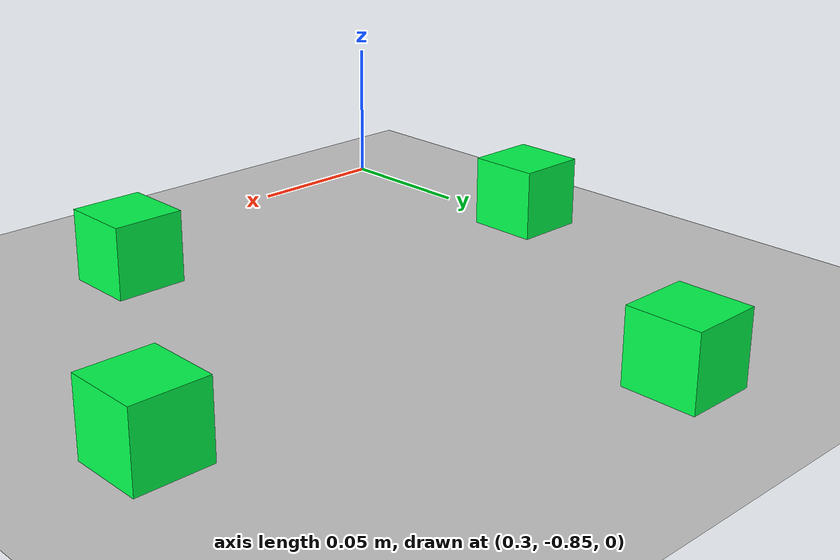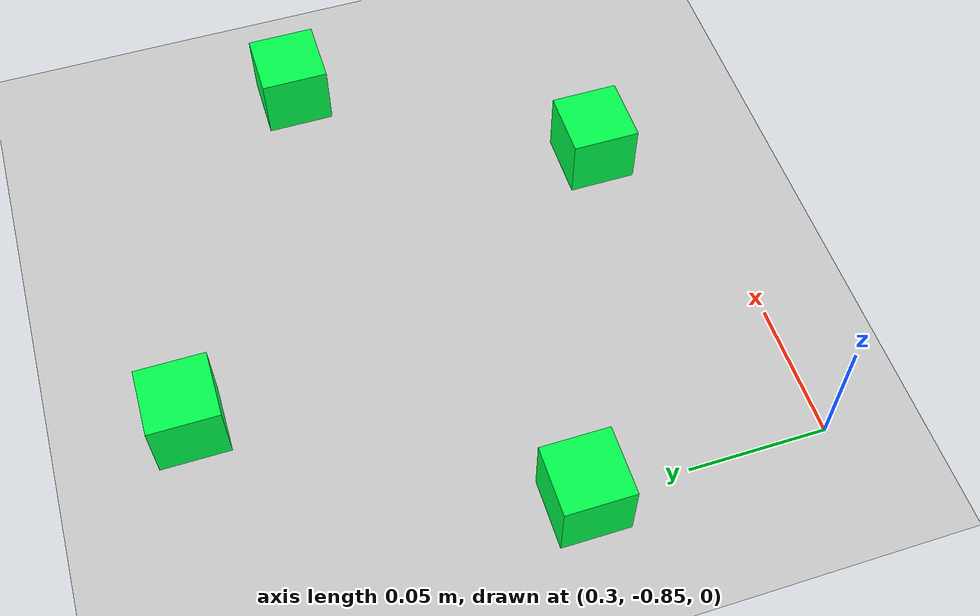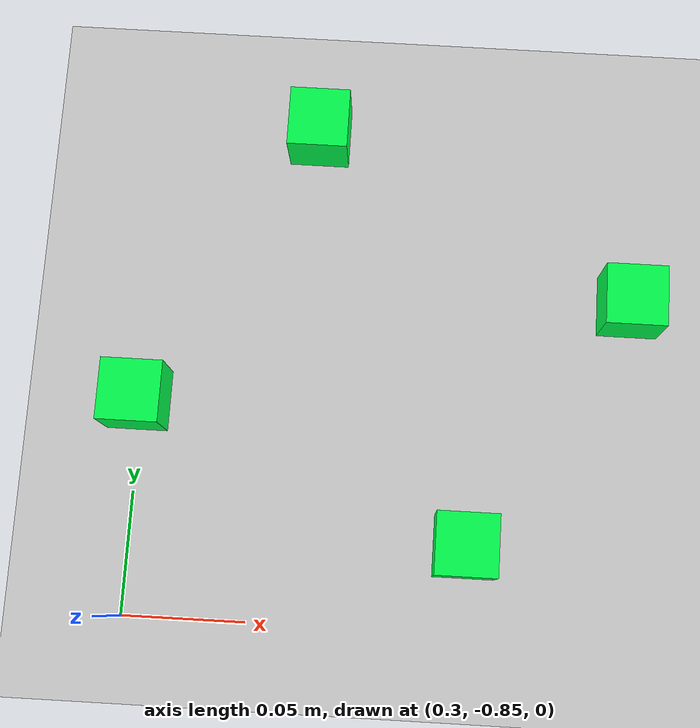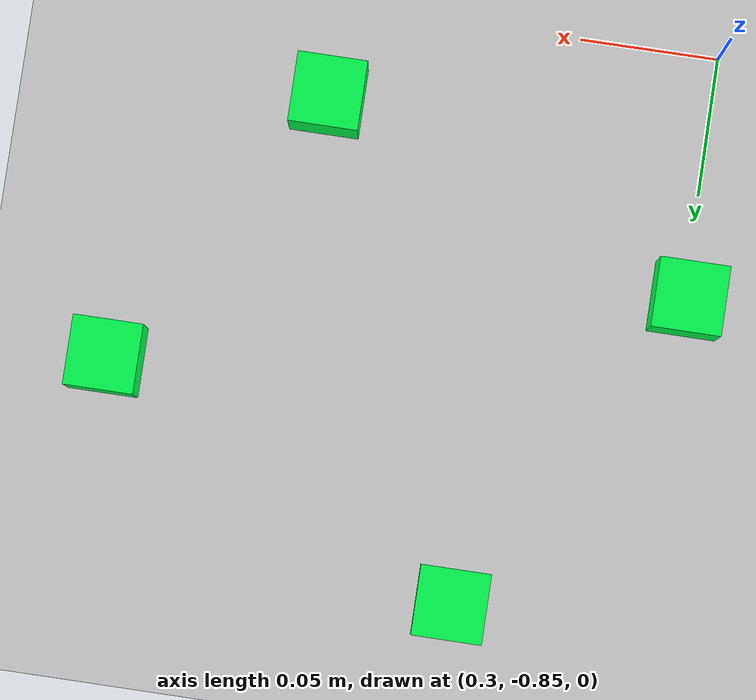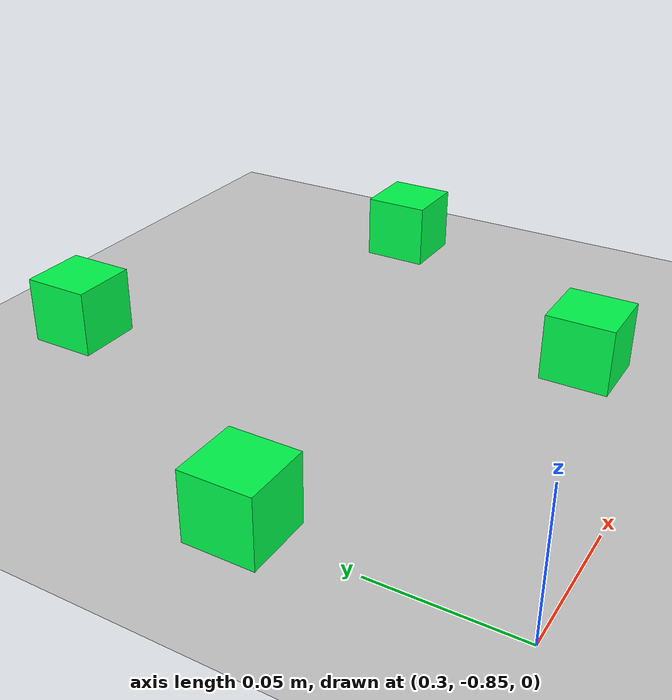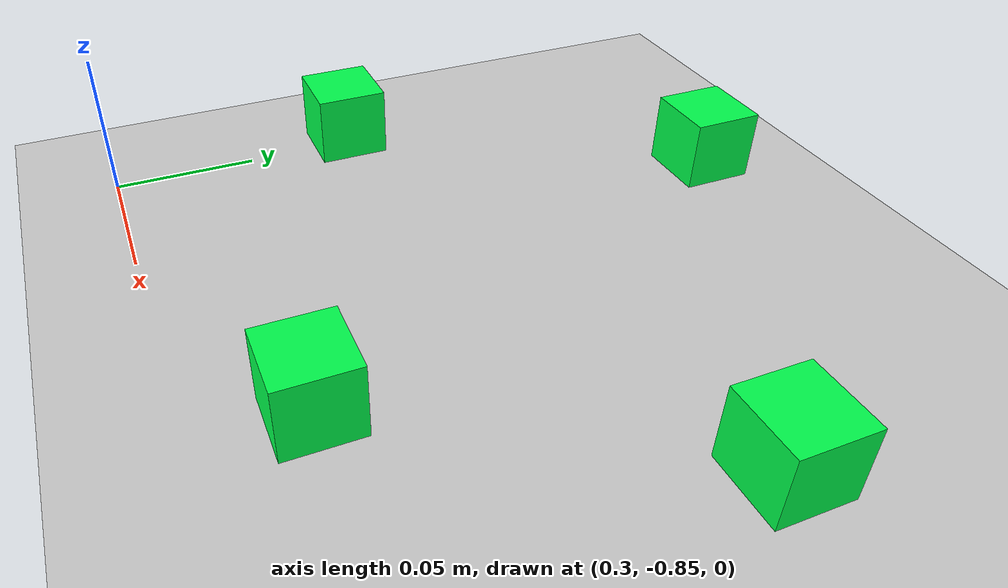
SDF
<sdf version="1.7">
 <world name="default">
  <model name="ground_plane">
   <static>1</static>
   <link name="link">
    <collision name="collision">
     <geometry><plane><normal>0 0 1</normal><size>100 100</size></plane></geometry>
     <surface>
      <contact><collide_bitmask>65535</collide_bitmask></contact>
      <friction><ode><mu>100</mu><mu2>50</mu2></ode></friction>
     </surface>
    </collision>
    <visual name="visual">
     <cast_shadows>0</cast_shadows>
     <geometry><plane><normal>0 0 1</normal><size>100 100</size></plane></geometry>
     <material>
      <script><uri>file://media/materials/scripts/gazebo.material</uri><name>Gazebo/Grey</name></script>
     </material>
    </visual>
   </link>
  </model>
  <model name="green_unit_box">
   <link name="link">
    <inertial>
     <mass>1</mass>
     <inertia>
      <ixx>0.166667</ixx>
      <ixy>0</ixy>
      <ixz>0</ixz>
      <iyy>0.166667</iyy>
      <iyz>0</iyz>
      <izz>0.166667</izz>
     </inertia>
    </inertial>
    <visual name="visual">
     <geometry><box><size>0.025 0.025 0.025</size></box></geometry>
     <material>
      <script><name>Gazebo/Grey</name><uri>file://media/materials/scripts/gazebo.material</uri></script>
      <shader type="pixel"><normal_map>__default__</normal_map></shader>
      <ambient>0 1 0.3 1</ambient>
      <diffuse>0 1 0.3 1</diffuse>
      <specular>0.01 0 0 1</specular>
      <emissive>0 0 0 1</emissive>
     </material>
    </visual>
    <collision name="collision">
     <geometry><box><size>0.025 0.025 0.025</size></box></geometry>
     <surface>
      <friction>
       <ode><mu>1</mu><mu2>1</mu2><fdir1>0 0 0</fdir1><slip1>0</slip1><slip2>0</slip2></ode>
       <torsional>
        <coefficient>1</coefficient>
        <patch_radius>0</patch_radius>
        <surface_radius>0</surface_radius>
        <use_patch_radius>1</use_patch_radius>
        <ode><slip>0</slip></ode>
       </torsional>
      </friction>
      <bounce><restitution_coefficient>0</restitution_coefficient><threshold>1e+06</threshold></bounce>
      <contact>
       <collide_without_contact>0</collide_without_contact>
       <collide_without_contact_bitmask>1</collide_without_contact_bitmask>
       <collide_bitmask>1</collide_bitmask>
       <ode>
        <soft_cfm>0</soft_cfm>
        <soft_erp>0.2</soft_erp>
        <kp>1e+13</kp>
        <kd>1</kd>
        <max_vel>0.01</max_vel>
        <min_depth>0</min_depth>
       </ode>
       <bullet>
        <split_impulse>1</split_impulse>
        <split_impulse_penetration_threshold>-0.01</split_impulse_penetration_threshold>
        <soft_cfm>0</soft_cfm>
        <soft_erp>0.2</soft_erp>
        <kp>1e+13</kp>
        <kd>1</kd>
       </bullet>
      </contact>
     </surface>
    </collision>
   </link>
   <static>0</static>
   <pose>0.366852 -0.642535 0.012501 -1e-06 -0.000114 -0.000837</pose>
  </model>
  <model name="green_unit_box_clone">
   <link name="link">
    <inertial>
     <mass>1</mass>
     <inertia>
      <ixx>0.166667</ixx>
      <ixy>0</ixy>
      <ixz>0</ixz>
      <iyy>0.166667</iyy>
      <iyz>0</iyz>
      <izz>0.166667</izz>
     </inertia>
    </inertial>
    <visual name="visual">
     <geometry><box><size>0.025 0.025 0.025</size></box></geometry>
     <material>
      <script><name>Gazebo/Grey</name><uri>file://media/materials/scripts/gazebo.material</uri></script>
      <shader type="pixel"><normal_map>__default__</normal_map></shader>
      <ambient>0 1 0.3 1</ambient>
      <diffuse>0 1 0.3 1</diffuse>
      <specular>0.01 0 0 1</specular>
      <emissive>0 0 0 1</emissive>
     </material>
    </visual>
    <collision name="collision">
     <geometry><box><size>0.025 0.025 0.025</size></box></geometry>
     <surface>
      <friction>
       <ode><mu>1</mu><mu2>1</mu2><fdir1>0 0 0</fdir1><slip1>0</slip1><slip2>0</slip2></ode>
       <torsional>
        <coefficient>1</coefficient>
        <patch_radius>0</patch_radius>
        <surface_radius>0</surface_radius>
        <use_patch_radius>1</use_patch_radius>
        <ode><slip>0</slip></ode>
       </torsional>
      </friction>
      <bounce><restitution_coefficient>0</restitution_coefficient><threshold>1e+06</threshold></bounce>
      <contact>
       <collide_without_contact>0</collide_without_contact>
       <collide_without_contact_bitmask>1</collide_without_contact_bitmask>
       <collide_bitmask>1</collide_bitmask>
       <ode>
        <soft_cfm>0</soft_cfm>
        <soft_erp>0.2</soft_erp>
        <kp>1e+13</kp>
        <kd>1</kd>
        <max_vel>0.01</max_vel>
        <min_depth>0</min_depth>
       </ode>
       <bullet>
        <split_impulse>1</split_impulse>
        <split_impulse_penetration_threshold>-0.01</split_impulse_penetration_threshold>
        <soft_cfm>0</soft_cfm>
        <soft_erp>0.2</soft_erp>
        <kp>1e+13</kp>
        <kd>1</kd>
       </bullet>
      </contact>
     </surface>
    </collision>
   </link>
   <static>0</static>
   <pose>0.500708 -0.711294 0.012501 -1e-06 -0.000114 -0.000837</pose>
  </model>
  <model name="green_unit_box_clone_0">
   <link name="link">
    <inertial>
     <mass>1</mass>
     <inertia>
      <ixx>0.166667</ixx>
      <ixy>0</ixy>
      <ixz>0</ixz>
      <iyy>0.166667</iyy>
      <iyz>0</iyz>
      <izz>0.166667</izz>
     </inertia>
    </inertial>
    <visual name="visual">
     <geometry><box><size>0.025 0.025 0.025</size></box></geometry>
     <material>
      <script><name>Gazebo/Grey</name><uri>file://media/materials/scripts/gazebo.material</uri></script>
      <shader type="pixel"><normal_map>__default__</normal_map></shader>
      <ambient>0 1 0.3 1</ambient>
      <diffuse>0 1 0.3 1</diffuse>
      <specular>0.01 0 0 1</specular>
      <emissive>0 0 0 1</emissive>
     </material>
    </visual>
    <collision name="collision">
     <geometry><box><size>0.025 0.025 0.025</size></box></geometry>
     <surface>
      <friction>
       <ode><mu>1</mu><mu2>1</mu2><fdir1>0 0 0</fdir1><slip1>0</slip1><slip2>0</slip2></ode>
       <torsional>
        <coefficient>1</coefficient>
        <patch_radius>0</patch_radius>
        <surface_radius>0</surface_radius>
        <use_patch_radius>1</use_patch_radius>
        <ode><slip>0</slip></ode>
       </torsional>
      </friction>
      <bounce><restitution_coefficient>0</restitution_coefficient><threshold>1e+06</threshold></bounce>
      <contact>
       <collide_without_contact>0</collide_without_contact>
       <collide_without_contact_bitmask>1</collide_without_contact_bitmask>
       <collide_bitmask>1</collide_bitmask>
       <ode>
        <soft_cfm>0</soft_cfm>
        <soft_erp>0.2</soft_erp>
        <kp>1e+13</kp>
        <kd>1</kd>
        <max_vel>0.01</max_vel>
        <min_depth>0</min_depth>
       </ode>
       <bullet>
        <split_impulse>1</split_impulse>
        <split_impulse_penetration_threshold>-0.01</split_impulse_penetration_threshold>
        <soft_cfm>0</soft_cfm>
        <soft_erp>0.2</soft_erp>
        <kp>1e+13</kp>
        <kd>1</kd>
       </bullet>
      </contact>
     </surface>
    </collision>
   </link>
   <static>0</static>
   <pose>0.436428 -0.815018 0.012501 -1e-06 -0.000114 -0.000837</pose>
  </model>
  <model name="green_unit_box_clone_1">
   <link name="link">
    <inertial>
     <mass>1</mass>
     <inertia>
      <ixx>0.166667</ixx>
      <ixy>0</ixy>
      <ixz>0</ixz>
      <iyy>0.166667</iyy>
      <iyz>0</iyz>
      <izz>0.166667</izz>
     </inertia>
    </inertial>
    <visual name="visual">
     <geometry><box><size>0.025 0.025 0.025</size></box></geometry>
     <material>
      <script><name>Gazebo/Grey</name><uri>file://media/materials/scripts/gazebo.material</uri></script>
      <shader type="pixel"><normal_map>__default__</normal_map></shader>
      <ambient>0 1 0.3 1</ambient>
      <diffuse>0 1 0.3 1</diffuse>
      <specular>0.01 0 0 1</specular>
      <emissive>0 0 0 1</emissive>
     </material>
    </visual>
    <collision name="collision">
     <geometry><box><size>0.025 0.025 0.025</size></box></geometry>
     <surface>
      <friction>
       <ode><mu>1</mu><mu2>1</mu2><fdir1>0 0 0</fdir1><slip1>0</slip1><slip2>0</slip2></ode>
       <torsional>
        <coefficient>1</coefficient>
        <patch_radius>0</patch_radius>
        <surface_radius>0</surface_radius>
        <use_patch_radius>1</use_patch_radius>
        <ode><slip>0</slip></ode>
       </torsional>
      </friction>
      <bounce><restitution_coefficient>0</restitution_coefficient><threshold>1e+06</threshold></bounce>
      <contact>
       <collide_without_contact>0</collide_without_contact>
       <collide_without_contact_bitmask>1</collide_without_contact_bitmask>
       <collide_bitmask>1</collide_bitmask>
       <ode>
        <soft_cfm>0</soft_cfm>
        <soft_erp>0.2</soft_erp>
        <kp>1e+13</kp>
        <kd>1</kd>
        <max_vel>0.01</max_vel>
        <min_depth>0</min_depth>
       </ode>
       <bullet>
        <split_impulse>1</split_impulse>
        <split_impulse_penetration_threshold>-0.01</split_impulse_penetration_threshold>
        <soft_cfm>0</soft_cfm>
        <soft_erp>0.2</soft_erp>
        <kp>1e+13</kp>
        <kd>1</kd>
       </bullet>
      </contact>
     </surface>
    </collision>
   </link>
   <static>0</static>
   <pose>0.299263 -0.761863 0.012501 -1e-06 -0.000114 -0.000837</pose>
  </model>
 </world>
</sdf>
